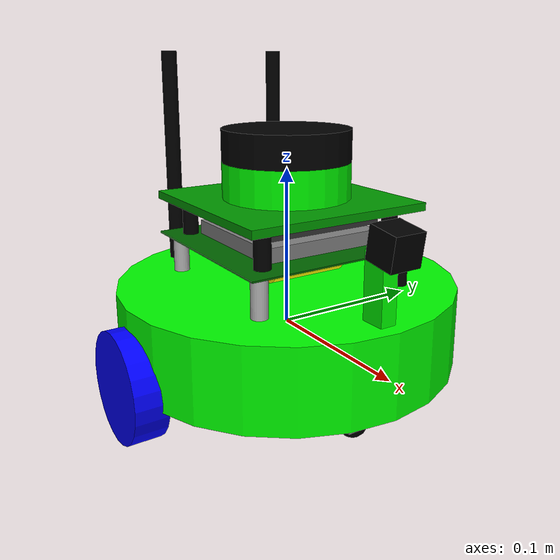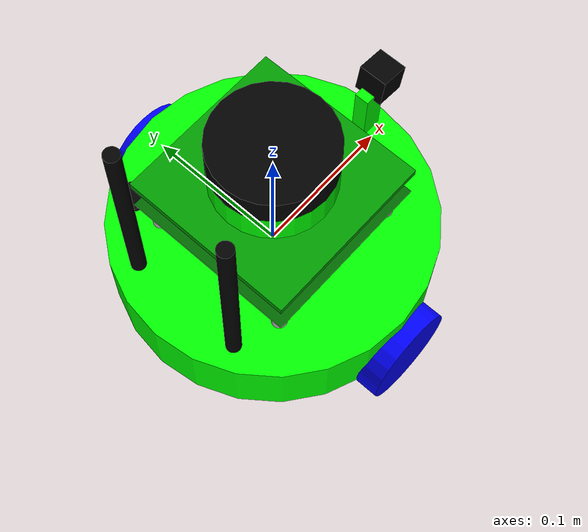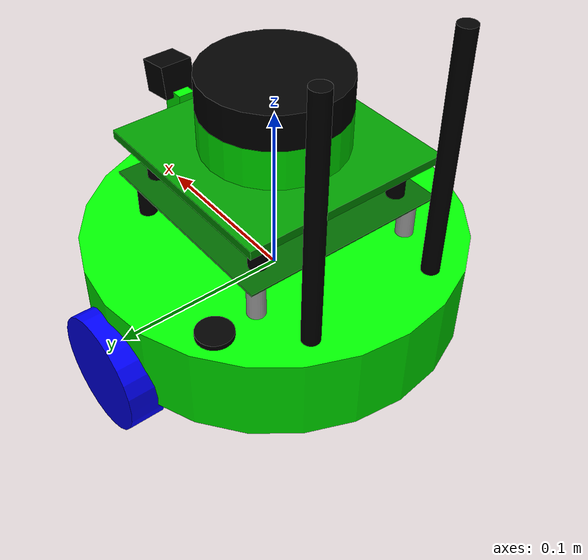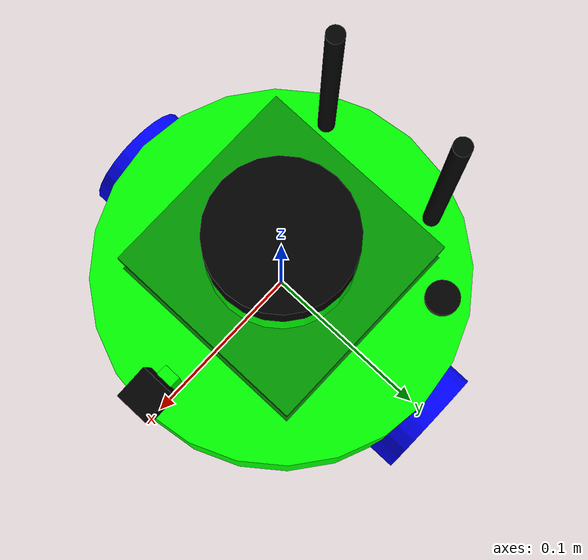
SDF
<?xml version="1.0" ?>
<sdf version="1.8">
            <!-- VERZIA 0.63 -->
  <model name='jetbot' canonical_link='base_link'>

    <!-- Hlavné telo robota -->
    <link name='base_link'>
      <pose relative_to='__model__'>0 0 0.005 0 0 0</pose>
      <inertial>
        <mass>1.6</mass>
        <inertia>
          <ixx>0.0055</ixx>
          <ixy>0</ixy>
          <ixz>0</ixz>
          <iyy>0.0055</iyy>
          <iyz>0</iyz>
          <izz>0.0091</izz>
        </inertia>
      </inertial>
      <visual name='base_link_visual'>
        <geometry>
          <cylinder>
            <radius>0.1066</radius>
            <length>0.05</length>
          </cylinder>
        </geometry>
        <material>
          <ambient>0.0 1.0 0.0 1</ambient>
          <diffuse>0.0 1.0 0.0 1</diffuse>
          <specular>0.0 1.0 0.0 1</specular>
        </material>
      </visual>
      <collision name='base_link_collision'>
        <geometry>
          <cylinder>
            <radius>0.1066</radius>
            <length>0.05</length>
          </cylinder>
        </geometry>
      </collision>

      <!-- Sensor pre IMU -->
      <sensor name="imu_sensor" type="imu">
        <update_rate>100</update_rate>
        <always_on>1</always_on>
        <visualize>true</visualize>
        <topic>/imu</topic>
      </sensor>

      <!-- Sensor pre kontaktný senzor -->
      <sensor name="contact_sensor" type="contact">
        <update_rate>100</update_rate>
        <contact>
          <collision>base_link_collision</collision>
          <collision>left_wheel_collision</collision>
          <collision>right_wheel_collision</collision>
        </contact>
      </sensor>
    </link>

    <!-- Ľavé koleso -->
    <link name='left_wheel'>
      <pose relative_to="base_link">0 0.1066 -0.02 1.5707 0 0</pose>
      <inertial>
        <mass>0.1</mass>
        <inertia>
          <ixx>0.000036</ixx>
          <ixy>0</ixy>
          <ixz>0</ixz>
          <iyy>0.000054</iyy>
          <iyz>0</iyz>
          <izz>0.000054</izz>
        </inertia>
      </inertial>
      <visual name='left_wheel_visual'>
        <geometry>
          <cylinder>
            <radius>0.033</radius>
            <length>0.02</length>
          </cylinder>
        </geometry>
        <material>
          <ambient>0.0 0.0 1.0 1</ambient>
          <diffuse>0.0 0.0 1.0 1</diffuse>
          <specular>0.0 0.0 1.0 1</specular>
        </material>
      </visual>
      <collision name='left_wheel_collision'>
        <geometry>
          <cylinder>
            <radius>0.033</radius>
            <length>0.02</length>
          </cylinder>
        </geometry>
        <surface>
          <friction>
            <ode>
              <mu>2.0</mu>
              <mu2>2.0</mu2>
            </ode>
          </friction>
        </surface>
      </collision>
    </link>
    <joint name='left_wheel_joint' type='revolute'>
      <pose relative_to='left_wheel'/>
      <parent>base_link</parent>
      <child>left_wheel</child>
      <axis>
        <xyz expressed_in='__model__'>0 1 0</xyz>
        <dynamics>
          <damping>0.5</damping>
          <friction>0.1</friction>
        </dynamics>
        <limit>
          <lower>-1.79769e+308</lower>
          <upper>1.79769e+308</upper>
        </limit>
      </axis>
    </joint>

    <!-- Pravé koleso -->
    <link name='right_wheel'>
      <pose relative_to="base_link">0 -0.1066 -0.02 1.5707 0 0</pose>
      <inertial>
        <mass>0.1</mass>
        <inertia>
          <ixx>0.000036</ixx>
          <ixy>0</ixy>
          <ixz>0</ixz>
          <iyy>0.000054</iyy>
          <iyz>0</iyz>
          <izz>0.000054</izz>
        </inertia>
      </inertial>
      <visual name='right_wheel_visual'>
        <geometry>
          <cylinder>
            <radius>0.033</radius>
            <length>0.02</length>
          </cylinder>
        </geometry>
        <material>
          <ambient>0.0 0.0 1.0 1</ambient>
          <diffuse>0.0 0.0 1.0 1</diffuse>
          <specular>0.0 0.0 1.0 1</specular>
        </material>
      </visual>
      <collision name='right_wheel_collision'>
        <geometry>
          <cylinder>
            <radius>0.033</radius>
            <length>0.02</length>
          </cylinder>
        </geometry>
        <surface>
          <friction>
            <ode>
              <mu>2.0</mu>
              <mu2>2.0</mu2>
            </ode>
          </friction>
        </surface>
      </collision>
    </link>
    <joint name='right_wheel_joint' type='revolute'>
      <pose relative_to='right_wheel'/>
      <parent>base_link</parent>
      <child>right_wheel</child>
      <axis>
        <xyz expressed_in='__model__'>0 1 0</xyz>
        <dynamics>
          <damping>0.5</damping>
          <friction>0.1</friction>
        </dynamics>
        <limit>
          <lower>-1.79769e+308</lower>
          <upper>1.79769e+308</upper>
        </limit>
      </axis>
    </joint>

  <!-- Podstavec pre pomocné koleso -->
  <link name='balance_wheel_base'>
    <pose relative_to="base_link">0.07 0 -0.034 0 0 0</pose>
    <inertial>
      <mass>0.01</mass>
      <inertia>
        <ixx>0.0001</ixx>
        <iyy>0.0001</iyy>
        <izz>0.0001</izz>
      </inertia>
    </inertial>
    <visual name='balance_wheel_base_visual'>
      <geometry>
        <box>
          <size>0.02 0.02 0.02</size>
        </box>
      </geometry>
      <material>
        <ambient>0.7 0.7 0.7 1</ambient>
        <diffuse>0.7 0.7 0.7 1</diffuse>
        <specular>0.7 0.7 0.7 1</specular>
      </material>
    </visual>
    <collision name='balance_wheel_base_collision'>
      <geometry>
        <box>
          <size>0.02 0.02 0.02</size>
        </box>
      </geometry>
    </collision>
  </link>
  <joint name='balance_wheel_base_joint' type='revolute'>
    <parent>base_link</parent>
    <child>balance_wheel_base</child>
    <axis>
      <xyz>0 0 1</xyz>
      <dynamics>
        <damping>0.1</damping>
        <friction>0.01</friction>
      </dynamics>
      <limit>
        <lower>-1.79769e+308</lower>
        <upper>1.79769e+308</upper>
      </limit>
    </axis>
  </joint>

    <!-- Pomocné koleso -->
    <link name='balance_wheel'>
      <pose relative_to='balance_wheel_base'>0 0 -0.01 1.5707 0 0</pose>
      <inertial>
        <mass>0.05</mass>
        <inertia>
          <ixx>0.0005</ixx>
          <ixy>0</ixy>
          <ixz>0</ixz>
          <iyy>0.0005</iyy>
          <iyz>0</iyz>
          <izz>0.0005</izz>
        </inertia>
      </inertial>
      <visual name='balance_wheel_visual'>
        <geometry>
          <sphere>
            <radius>0.009</radius>
          </sphere>
        </geometry>
          <material>
            <ambient>0 0 0 1</ambient>
            <diffuse>0 0 0 1</diffuse>
            <specular>0 0 0 1</specular>
          </material>
      </visual>
      <collision name='balance_wheel_collision'>
        <geometry>
          <sphere>
            <radius>0.009</radius>
          </sphere>
        </geometry>
        <surface>
          <friction>
            <ode>
              <mu>0.1</mu>
              <mu2>0.1</mu2>
            </ode>
          </friction>
        </surface>
      </collision>
    </link>
    <joint name='balance_wheel_joint' type='ball'>
      <parent>balance_wheel_base</parent>
      <child>balance_wheel</child>
    </joint>

    <!-- Podstavec pre pomocné koleso_2 -->
    <link name='balance_wheel_2_base'>
      <pose relative_to="base_link">-0.07 0 -0.034 0 0 0</pose>
      <inertial>
        <mass>0.01</mass>
        <inertia>
          <ixx>0.0001</ixx>
          <iyy>0.0001</iyy>
          <izz>0.0001</izz>
        </inertia>
      </inertial>
      <visual name='balance_wheel_2_base_visual'>
        <geometry>
          <box>
            <size>0.02 0.02 0.02</size>
          </box>
        </geometry>
        <material>
          <ambient>0.7 0.7 0.7 1</ambient>
          <diffuse>0.7 0.7 0.7 1</diffuse>
          <specular>0.7 0.7 0.7 1</specular>
        </material>
      </visual>
      <collision name='balance_wheel_2_base_collision'>
        <geometry>
          <box>
            <size>0.02 0.02 0.02</size>
          </box>
        </geometry>
      </collision>
    </link>
    <joint name='balance_wheel_2_base_joint' type='revolute'>
      <parent>base_link</parent>
      <child>balance_wheel_2_base</child>
      <axis>
        <xyz>0 0 1</xyz>
        <dynamics>
          <damping>0.1</damping>
          <friction>0.01</friction>
        </dynamics>
        <limit>
          <lower>-1.79769e+308</lower>
          <upper>1.79769e+308</upper>
        </limit>
      </axis>
    </joint>

    <!-- Pomocné koleso_2 -->
    <link name='balance_wheel_2'>
      <pose relative_to='balance_wheel_2_base'>0 0 -0.01 1.5707 0 0</pose>
      <inertial>
        <mass>0.05</mass>
        <inertia>
          <ixx>0.0005</ixx>
          <ixy>0</ixy>
          <ixz>0</ixz>
          <iyy>0.0005</iyy>
          <iyz>0</iyz>
          <izz>0.0005</izz>
        </inertia>
      </inertial>
      <visual name='balance_wheel_2_visual'>
        <geometry>
          <sphere>
            <radius>0.009</radius>
          </sphere>
        </geometry>
          <material>
            <ambient>0 0 0 1</ambient>
            <diffuse>0 0 0 1</diffuse>
            <specular>0 0 0 1</specular>
          </material>
      </visual>
      <collision name='balance_wheel_2_collision'>
        <geometry>
          <sphere>
            <radius>0.009</radius>
          </sphere>
        </geometry>
        <surface>
          <friction>
            <ode>
              <mu>0.1</mu>
              <mu2>0.1</mu2>
            </ode>
          </friction>
        </surface>
      </collision>
    </link>
    <joint name='balance_wheel_2_joint' type='ball'>
      <parent>balance_wheel_2_base</parent>
      <child>balance_wheel_2</child>
    </joint>

    <!-- Anténka_1 -->
    <link name='antenna_1'>
      <pose relative_to="base_link">-0.08 0.04 0.09 0 0 0</pose>
      <inertial>
        <mass>0.02</mass>
        <inertia>
          <ixx>0.0002</ixx>
          <ixy>0</ixy>
          <ixz>0</ixz>
          <iyy>0.0002</iyy>
          <iyz>0</iyz>
          <izz>0.0002</izz>
        </inertia>
      </inertial>
      <visual name='antenna_1_visual'>
        <geometry>
          <cylinder>
            <radius>0.005</radius>
            <length>0.15</length>
          </cylinder>
        </geometry>
        <material>
          <ambient>0 0 0 1</ambient>
          <diffuse>0 0 0 1</diffuse>
          <specular>0 0 0 1</specular>
        </material>
      </visual>
      <collision name='antenna_1_collision'>
        <geometry>
          <cylinder>
            <radius>0.005</radius>
            <length>0.15</length>
          </cylinder>
        </geometry>
      </collision>
    </link>
    <joint name='antenna_1_joint' type='fixed'>
      <parent>base_link</parent>
      <child>antenna_1</child>
      <pose relative_to='base_link'>-0.08 0.04 0.09 0 0 0</pose>
    </joint>

    <!-- Anténka_2 -->
    <link name='antenna_2'>
      <pose relative_to="base_link">-0.08 -0.04 0.09 0 0 0</pose>
      <inertial>
        <mass>0.02</mass>
        <inertia>
          <ixx>0.0002</ixx>
          <ixy>0</ixy>
          <ixz>0</ixz>
          <iyy>0.0002</iyy>
          <iyz>0</iyz>
          <izz>0.0002</izz>
        </inertia>
      </inertial>
      <visual name='antenna_2_visual'>
        <geometry>
          <cylinder>
            <radius>0.005</radius>
            <length>0.15</length>
          </cylinder>
        </geometry>
        <material>
          <ambient>0 0 0 1</ambient>
          <diffuse>0 0 0 1</diffuse>
          <specular>0 0 0 1</specular>
        </material>
      </visual>
      <collision name='antenna_2_collision'>
        <geometry>
          <cylinder>
            <radius>0.005</radius>
            <length>0.15</length>
          </cylinder>
        </geometry>
      </collision>
    </link>
    <joint name='antenna_2_joint' type='fixed'>
      <parent>base_link</parent>
      <child>antenna_2</child>
      <pose relative_to='base_link'>-0.08 -0.04 0.09 0 0 0</pose>
    </joint>

    <!-- Piliere spodné -->
    <link name="pillar_1">
      <pose relative_to="base_link">0.05 0.05 0.025 0 0 0</pose>
      <inertial>
        <mass>0.05</mass>
        <inertia>
          <ixx>0.0005</ixx>
          <iyy>0.0005</iyy>
          <izz>0.0005</izz>
        </inertia>
      </inertial>
      <visual name="pillar_1_visual">
        <geometry>
          <cylinder>
            <radius>0.005</radius>
            <length>0.05</length>
          </cylinder>
        </geometry>
          <material>
            <ambient>0 0 0 1</ambient>
            <diffuse>0 0 0 1</diffuse>
            <specular>0 0 0 1</specular>
          </material>
      </visual>
      <collision name="pillar_1_collision">
        <geometry>
          <cylinder>
            <radius>0.005</radius>
            <length>0.05</length>
          </cylinder>
        </geometry>
      </collision>
    </link>
    <joint name="pillar_1_joint" type="fixed">
      <parent>base_link</parent>
      <child>pillar_1</child>
    </joint>
    <link name="pillar_2">
      <pose relative_to="base_link">-0.05 0.05 0.025 0 0 0</pose>
      <visual name="pillar_2_visual">
        <geometry>
          <cylinder>
            <radius>0.005</radius>
            <length>0.05</length>
          </cylinder>
        </geometry>
      </visual>
    </link>
    <joint name="pillar_2_joint" type="fixed">
      <parent>base_link</parent>
      <child>pillar_2</child>
    </joint>
    <link name="pillar_3">
      <pose relative_to="base_link">0.05 -0.05 0.025 0 0 0</pose>
      <visual name="pillar_3_visual">
        <geometry>
          <cylinder>
            <radius>0.005</radius>
            <length>0.05</length>
          </cylinder>
        </geometry>
      </visual>
    </link>
    <joint name="pillar_3_joint" type="fixed">
      <parent>base_link</parent>
      <child>pillar_3</child>
    </joint>
    <link name="pillar_4">
      <pose relative_to="base_link">-0.05 -0.05 0.025 0 0 0</pose>
      <visual name="pillar_4_visual">
        <geometry>
          <cylinder>
            <radius>0.005</radius>
            <length>0.05</length>
          </cylinder>
        </geometry>
      </visual>
    </link>
    <joint name="pillar_4_joint" type="fixed">
      <parent>base_link</parent>
      <child>pillar_4</child>
    </joint>

    <!-- Speaker -->
    <link name ='speaker'>
      <pose relative_to="base_link">-0.05 0.075 0.026 0 0 0</pose>
      <inertial>
        <mass>0.01</mass>
        <inertia>
          <ixx>0.0001</ixx>
          <ixy>0</ixy>
          <ixz>0</ixz>
          <iyy>0.0001</iyy>
          <iyz>0</iyz>
          <izz>0.0001</izz>
        </inertia>
      </inertial>
      <visual name='speaker_visual'>
        <geometry>
          <cylinder>
            <radius>0.01</radius>
            <length>0.004</length>
          </cylinder>
        </geometry>
        <material>
          <ambient>0 0 0 1</ambient>
          <diffuse>0 0 0 1</diffuse>
          <specular>0 0 0 1</specular>
        </material>
      </visual>
      <collision name='speaker_collision'>
        <geometry>
          <cylinder>
            <radius>0.01</radius>
            <length>0.004</length>
          </cylinder>
        </geometry>
      </collision>
    </link>
    <joint name='speaker_joint' type='fixed'>
      <parent>base_link</parent>
      <child>speaker</child>
    </joint>

    <!-- Podstavec -->
    <link name="plate">
      <pose relative_to="base_link">0 0 0.050 0 0 0</pose>
      <inertial>
        <mass>0.1</mass>
        <inertia>
          <ixx>0.001</ixx>
          <iyy>0.001</iyy>
          <izz>0.001</izz>
        </inertia>
      </inertial>
      <visual name="plate_visual">
        <geometry>
          <box>
            <size>0.12 0.12 0.001</size>
          </box>
        </geometry>
        <material>
          <ambient>0.0 0.4 0.0 1</ambient>
          <diffuse>0.0 0.4 0.0 1</diffuse>
          <specular>0.0 0.4 0.0 1</specular>
        </material>
      </visual>
      <collision name="plate_collision">
        <geometry>
          <box>
            <size>0.12 0.12 0.001</size>
          </box>
        </geometry>
      </collision>
    </link>
    <joint name="plate_joint" type="fixed">
      <parent>pillar_1</parent>
      <child>plate</child>
    </joint>

    <!-- Matičná doska -->
    <link name="motherboard">
      <pose relative_to="plate">0 0 0.005 0 0 0</pose>
      <inertial>
        <mass>0.2</mass>
        <inertia>
          <ixx>0.001</ixx>
          <iyy>0.001</iyy>
          <izz>0.001</izz>
        </inertia>
      </inertial>
      <visual name="motherboard_visual">
        <geometry>
          <box>
            <size>0.08 0.08 0.009</size>
          </box>
        </geometry>
        <material>
          <ambient>0.5 0.5 0.5 1</ambient>
          <diffuse>0.5 0.5 0.5 1</diffuse>
          <specular>0.5 0.5 0.5 1</specular>
        </material>
      </visual>
      <collision name="motherboard_collision">
        <geometry>
          <box>
            <size>0.08 0.08 0.009</size>
          </box>
        </geometry>
      </collision>
    </link>
    <joint name="motherboard_joint" type="fixed">
      <parent>plate</parent>
      <child>motherboard</child>
    </joint>

    <!-- Podstavec_2_vrchný -->
    <link name="top_plate">
      <pose relative_to="plate">0 0 0.025 0 0 0</pose>
      <inertial>
        <mass>0.1</mass>
        <inertia>
          <ixx>0.0005</ixx>
          <iyy>0.0005</iyy>
          <izz>0.0005</izz>
        </inertia>
      </inertial>
      <visual name="top_plate_visual">
        <geometry>
          <box>
            <size>0.12 0.12 0.005</size>
          </box>
        </geometry>
        <material>
          <ambient>0.0 0.6 0.0 1</ambient>
          <diffuse>0.0 0.6 0.0 1</diffuse>
          <specular>0.0 0.6 0.0 1</specular>
        </material>
      </visual>
      <collision name="top_plate_collision">
        <geometry>
          <box>
            <size>0.12 0.12 0.005</size>
          </box>
        </geometry>
      </collision>
    </link>
    <joint name="top_plate_joint" type="fixed">
      <parent>pillar_5</parent>
      <child>top_plate</child>
    </joint>

    <!-- Jetson Nano počítač -->
    <link name="jetson_nano">
      <pose relative_to="top_plate">0 0 -0.005 0 0 0</pose>
      <inertial>
        <mass>0.2</mass>
        <inertia>
          <ixx>0.001</ixx>
          <iyy>0.001</iyy>
          <izz>0.001</izz>
        </inertia>
      </inertial>
      <visual name="jetson_nano_visual">
        <geometry>
          <box>
            <size>0.08 0.08 0.014</size>
          </box>
        </geometry>
        <material>
          <ambient>0.2 0.2 0.2 1</ambient>
          <diffuse>0.2 0.2 0.2 1</diffuse>
          <specular>0.2 0.2 0.2 1</specular>
        </material>
      </visual>
      <collision name="jetson_nano_collision">
        <geometry>
          <box>
            <size>0.08 0.08 0.014</size>
          </box>
        </geometry>
      </collision>
    </link>
    <joint name="jetson_nano_joint" type="fixed">
      <parent>top_plate</parent>
      <child>jetson_nano</child>
    </joint>

    <!-- Piliere vrchné -->
    <link name="pillar_5">
      <pose relative_to="plate">0.045 0.045 0.0125 0 0 0</pose>
      <inertial>
        <mass>0.02</mass>
        <inertia>
          <ixx>0.0002</ixx>
          <iyy>0.0002</iyy>
          <izz>0.0002</izz>
        </inertia>
      </inertial>
      <visual name="pillar_5_visual">
        <geometry>
          <cylinder>
            <radius>0.005</radius>
            <length>0.025</length>
          </cylinder>
        </geometry>
        <material>
          <ambient>0 0 0 1</ambient>
          <diffuse>0 0 0 1</diffuse>
          <specular>0 0 0 1</specular>
        </material>
      </visual>
      <collision name="pillar_5_collision">
        <geometry>
          <cylinder>
            <radius>0.005</radius>
            <length>0.025</length>
          </cylinder>
        </geometry>
      </collision>
    </link>
    <joint name="pillar_5_joint" type="fixed">
      <parent>plate</parent>
      <child>pillar_5</child>
    </joint>
    <link name="pillar_6">
      <pose relative_to="plate">-0.045 0.045 0.0125 0 0 0</pose>
      <inertial>
        <mass>0.02</mass>
        <inertia>
          <ixx>0.0002</ixx>
          <iyy>0.0002</iyy>
          <izz>0.0002</izz>
        </inertia>
      </inertial>
      <visual name="pillar_6_visual">
        <geometry>
          <cylinder>
            <radius>0.005</radius>
            <length>0.025</length>
          </cylinder>
        </geometry>
        <material>
          <ambient>0 0 0 1</ambient>
          <diffuse>0 0 0 1</diffuse>
          <specular>0 0 0 1</specular>
        </material>
      </visual>
      <collision name="pillar_6_collision">
        <geometry>
          <cylinder>
            <radius>0.005</radius>
            <length>0.025</length>
          </cylinder>
        </geometry>
      </collision>
    </link>
    <joint name="pillar_6_joint" type="fixed">
      <parent>plate</parent>
      <child>pillar_6</child>
    </joint>
    <link name="pillar_7">
      <pose relative_to="plate">0.045 -0.045 0.0125 0 0 0</pose>
      <inertial>
        <mass>0.02</mass>
        <inertia>
          <ixx>0.0002</ixx>
          <iyy>0.0002</iyy>
          <izz>0.0002</izz>
        </inertia>
      </inertial>
      <visual name="pillar_7_visual">
        <geometry>
          <cylinder>
            <radius>0.005</radius>
            <length>0.025</length>
          </cylinder>
        </geometry>
        <material>
          <ambient>0 0 0 1</ambient>
          <diffuse>0 0 0 1</diffuse>
          <specular>0 0 0 1</specular>
        </material>
      </visual>
      <collision name="pillar_7_collision">
        <geometry>
          <cylinder>
            <radius>0.005</radius>
            <length>0.025</length>
          </cylinder>
        </geometry>
      </collision>
    </link>
    <joint name="pillar_7_joint" type="fixed">
      <parent>plate</parent>
      <child>pillar_7</child>
    </joint>
    <link name="pillar_8">
      <pose relative_to="plate">-0.045 -0.045 0.0125 0 0 0</pose>
      <inertial>
        <mass>0.02</mass>
        <inertia>
          <ixx>0.0002</ixx>
          <iyy>0.0002</iyy>
          <izz>0.0002</izz>
        </inertia>
      </inertial>
      <visual name="pillar_8_visual">
        <geometry>
          <cylinder>
            <radius>0.005</radius>
            <length>0.025</length>
          </cylinder>
        </geometry>
        <material>
          <ambient>0 0 0 1</ambient>
          <diffuse>0 0 0 1</diffuse>
          <specular>0 0 0 1</specular>
        </material>
      </visual>
      <collision name="pillar_8_collision">
        <geometry>
          <cylinder>
            <radius>0.005</radius>
            <length>0.025</length>
          </cylinder>
        </geometry>
      </collision>
    </link>
    <joint name="pillar_8_joint" type="fixed">
      <parent>plate</parent>
      <child>pillar_8</child>
    </joint>

    <!-- Batérie -->
    <link name="battery_1">
      <pose relative_to="plate">-0.018 0 -0.010 1.5707 1.5707 0</pose>
      <inertial>
        <mass>0.05</mass>
        <inertia>
          <ixx>0.0005</ixx>
          <iyy>0.0005</iyy>
          <izz>0.0005</izz>
        </inertia>
      </inertial>
      <visual name="battery_1_visual">
        <geometry>
          <cylinder>
            <radius>0.009</radius>
            <length>0.050</length>
          </cylinder>
        </geometry>
        <material>
          <ambient>1 1 0 1</ambient>
          <diffuse>1 1 0 1</diffuse>
          <specular>1 1 0 1</specular>
        </material>
      </visual>
      <collision name="battery_1_collision">
        <geometry>
          <cylinder>
            <radius>0.009</radius>
            <length>0.050</length>
          </cylinder>
        </geometry>
      </collision>
    </link>
    <joint name="battery_1_joint" type="fixed">
      <parent>plate</parent>
      <child>battery_1</child>
    </joint>

    <link name="battery_2">
      <pose relative_to="plate">0 0 -0.010 1.5707 1.5707 0</pose>
      <inertial>
        <mass>0.05</mass>
        <inertia>
          <ixx>0.0005</ixx>
          <iyy>0.0005</iyy>
          <izz>0.0005</izz>
        </inertia>
      </inertial>
      <visual name="battery_2_visual">
        <geometry>
          <cylinder>
            <radius>0.009</radius>
            <length>0.050</length>
          </cylinder>
        </geometry>
        <material>
          <ambient>1 1 0 1</ambient>
          <diffuse>1 1 0 1</diffuse>
          <specular>1 1 0 1</specular>
        </material>
      </visual>
      <collision name="battery_2_collision">
        <geometry>
          <cylinder>
            <radius>0.009</radius>
            <length>0.050</length>
          </cylinder>
        </geometry>
      </collision>
    </link>
    <joint name="battery_2_joint" type="fixed">
      <parent>plate</parent>
      <child>battery_2</child>
    </joint>

    <link name="battery_3">
      <pose relative_to="plate">0.018 0 -0.010 1.5707 1.5707 0</pose>
      <inertial>
        <mass>0.05</mass>
        <inertia>
          <ixx>0.0005</ixx>
          <iyy>0.0005</iyy>
          <izz>0.0005</izz>
        </inertia>
      </inertial>
      <visual name="battery_3_visual">
        <geometry>
          <cylinder>
            <radius>0.009</radius>
            <length>0.050</length>
          </cylinder>
        </geometry>
        <material>
          <ambient>1 1 0 1</ambient>
          <diffuse>1 1 0 1</diffuse>
          <specular>1 1 0 1</specular>
        </material>
      </visual>
      <collision name="battery_3_collision">
        <geometry>
          <cylinder>
            <radius>0.009</radius>
            <length>0.050</length>
          </cylinder>
        </geometry>
      </collision>
    </link>
    <joint name="battery_3_joint" type="fixed">
      <parent>plate</parent>
      <child>battery_3</child>
    </joint>

    <!-- Podstavec pre kameru -->
    <link name="camera_base">
      <pose relative_to="base_link">0.09 0 0.045 0 0 0</pose>
      <inertial>
        <mass>0.05</mass>
        <inertia>
          <ixx>0.0005</ixx>
          <ixy>0</ixy>
          <ixz>0</ixz>
          <iyy>0.0005</iyy>
          <iyz>0</iyz>
          <izz>0.0005</izz>
        </inertia>
      </inertial>
      <visual name="camera_base_visual">
        <geometry>
          <box>
            <size>0.015 0.010 0.04</size>
          </box>
        </geometry>
          <material>
            <ambient>0 1 0 1</ambient>
            <diffuse>0 1 0 1</diffuse>
            <specular>0 1 0 1</specular>
          </material>
      </visual>
      <collision name="camera_base_collision">
        <geometry>
          <box>
            <size>0.015 0.010 0.04</size>
          </box>
        </geometry>
      </collision>
    </link>
    <joint name="camera_base_joint" type="fixed">
      <parent>base_link</parent>
      <child>camera_base</child>
    </joint>

    <!-- Kamera -->
    <link name="camera">
      <pose relative_to="camera_base">0.01 0 0.025 0 0.15 0</pose>
      <visual name='camera_visual'>
        <geometry>
          <box>
            <size>0.02 0.02 0.02</size>
          </box>
        </geometry>
        <material>
          <ambient>0 0 0 1</ambient>
          <diffuse>0 0 0 1</diffuse>
          <specular>0 0 0 1</specular>
        </material>
      </visual>
      <collision name='camera_collision'>
        <geometry>
          <box>
            <size>0.02 0.02 0.02</size>
          </box>
        </geometry>
      </collision>
      <sensor name="sim_camera" type="camera">
        <topic>image</topic>
        <gz_frame_id>camera</gz_frame_id>
        <update_rate>30</update_rate>
        <camera>
          <horizontal_fov>1.39626</horizontal_fov>
          <image>
            <width>640</width>
            <height>480</height>
            <format>R8G8B8</format>
          </image>
          <clip>
            <near>0.1</near>
            <far>100</far>
          </clip>
        </camera>
      </sensor>
    </link>
    <joint name='camera_joint' type='fixed'>
      <parent>camera_base</parent>
      <child>camera</child>
    </joint>

    <!-- Podstavec pre LIDAR -->
    <link name='lidar_base'>
      <pose relative_to="top_plate">0 0 0.010 0 0 0</pose>
      <inertial>
        <mass>0.1</mass>
        <inertia>
          <ixx>0.001</ixx>
          <ixy>0</ixy>
          <ixz>0</ixz>
          <iyy>0.001</iyy>
          <iyz>0</iyz>
          <izz>0.002</izz>
        </inertia>
      </inertial>
      <visual name='lidar_base_visual'>
        <geometry>
          <cylinder>
            <radius>0.04</radius>
            <length>0.030</length>
          </cylinder>
        </geometry>
        <material>
          <ambient>0 1 0 1</ambient>
          <diffuse>0 1 0 1</diffuse>
          <specular>0 1 0 1</specular>
        </material>
      </visual>
      <collision name='lidar_base_collision'>
        <geometry>
          <cylinder>
            <radius>0.04</radius>
            <length>0.030</length>
          </cylinder>
        </geometry>
      </collision>
    </link>
    <joint name='lidar_base_joint' type='fixed'>
      <parent>top_plate</parent>
      <child>lidar_base</child>
    </joint>

    <!-- LIDAR -->
    <link name='lidar'>
      <pose relative_to="lidar_base">0 0 0.025 0 0 0</pose>
      <visual name='lidar_visual'>
        <geometry>
          <cylinder>
            <radius>0.04</radius>
            <length>0.02</length>
          </cylinder>
        </geometry>
        <material>
          <ambient>0 0 0 1</ambient>
          <diffuse>0 0 0 1</diffuse>
          <specular>0 0 0 1</specular>
        </material>
      </visual>
      <collision name='lidar_collision'>
        <geometry>
          <cylinder>
            <radius>0.04</radius>
            <length>0.02</length>
          </cylinder>
        </geometry>
      </collision>
      <sensor name="lidar_sensor" type="gpu_lidar">
        <topic>scan</topic>
        <gz_frame_id>lidar</gz_frame_id>
        <update_rate>10</update_rate>
        <ray>
          <scan>
            <horizontal>
              <samples>640</samples>
              <resolution>1</resolution>
              <min_angle>-3.14</min_angle>
              <max_angle>3.14</max_angle>
            </horizontal>
            <vertical>
              <samples>1</samples>
              <resolution>0.01</resolution>
              <min_angle>0</min_angle>
              <max_angle>0</max_angle>
            </vertical>
          </scan>
          <range>
            <min>0.08</min>
            <max>10.0</max>
            <resolution>0.01</resolution>
          </range>
        </ray>
        <always_on>1</always_on>
        <visualize>true</visualize>
      </sensor>
    </link>
    <joint name='lidar_joint' type='fixed'>
      <parent>lidar_base</parent>
      <child>lidar</child>
    </joint>

    <!-- Diferenciálny pohon -->
    <plugin filename="gz-sim-diff-drive-system" name="gz::sim::systems::DiffDrive">
      <left_joint>left_wheel_joint</left_joint>
      <right_joint>right_wheel_joint</right_joint>
      <wheel_separation>0.21325</wheel_separation>
      <wheel_radius>0.033</wheel_radius>
      <odom_topic>odom</odom_topic>
      <odom_publish_frequency>50</odom_publish_frequency>
      <topic>cmd_vel</topic>
      <cmd_timeout>0.5</cmd_timeout>
      <tf_topic>tf</tf_topic>
      <frame_id>odom</frame_id>
      <child_frame_id>base_link</child_frame_id>
      <publish_tf>true</publish_tf>
    </plugin>

    <!-- JointStatePublisher plugin -->
    <plugin filename="gz-sim-joint-state-publisher-system" name="gz::sim::systems::JointStatePublisher">
      <topic>joint_states</topic>
      <joint_name>left_wheel_joint</joint_name>
      <joint_name>right_wheel_joint</joint_name>
      <joint_name>balance_wheel_joint</joint_name>
      <joint_name>balance_wheel_base_joint</joint_name>
      <joint_name>balance_wheel_2_joint</joint_name>
      <joint_name>balance_wheel_2_base_joint</joint_name>
    </plugin>

  </model>
</sdf>
